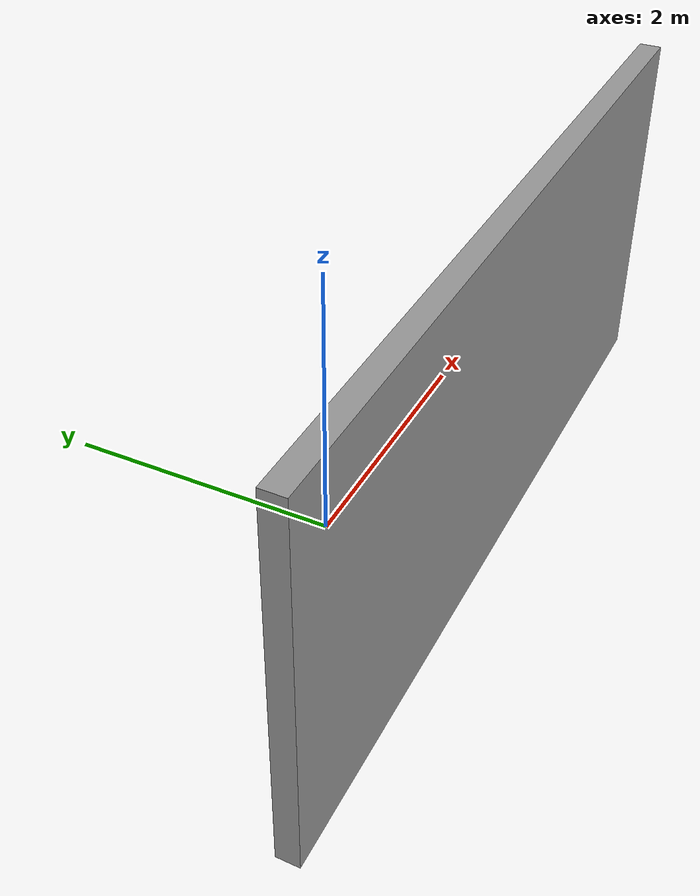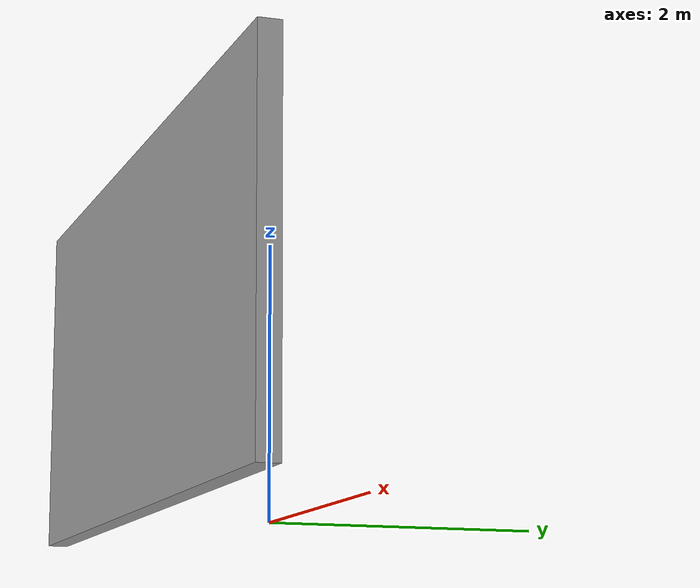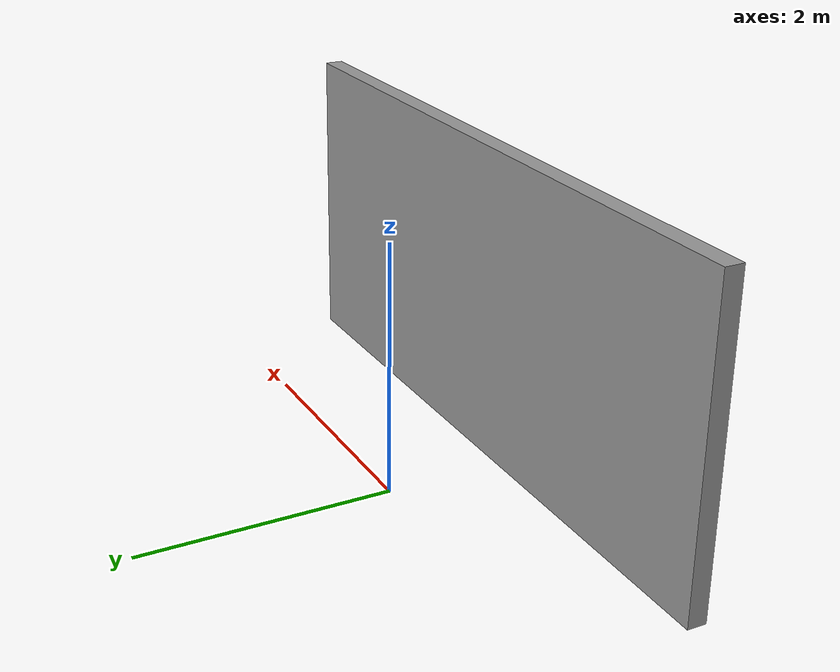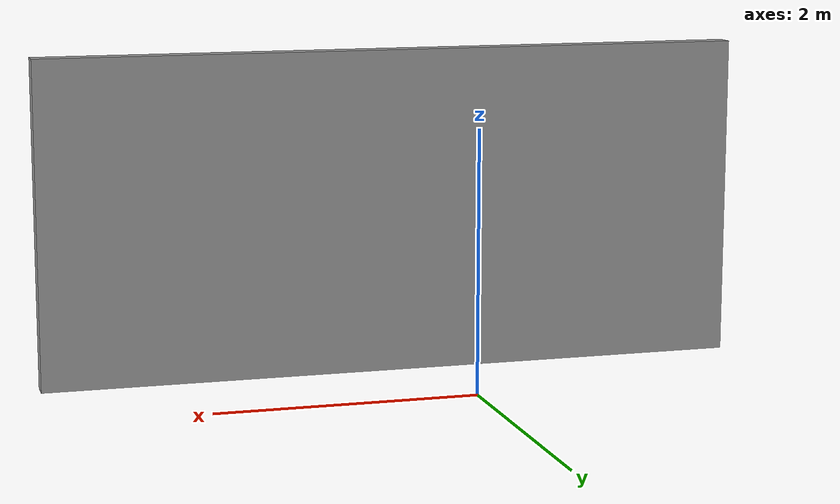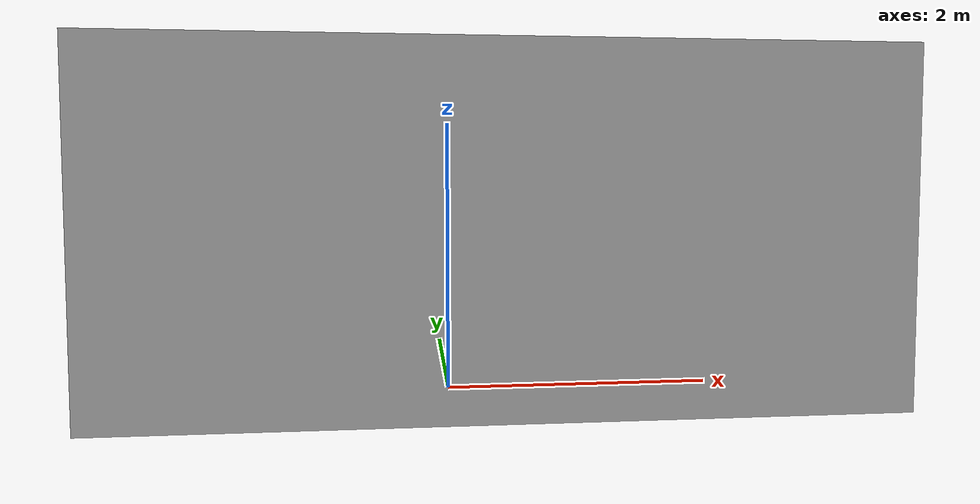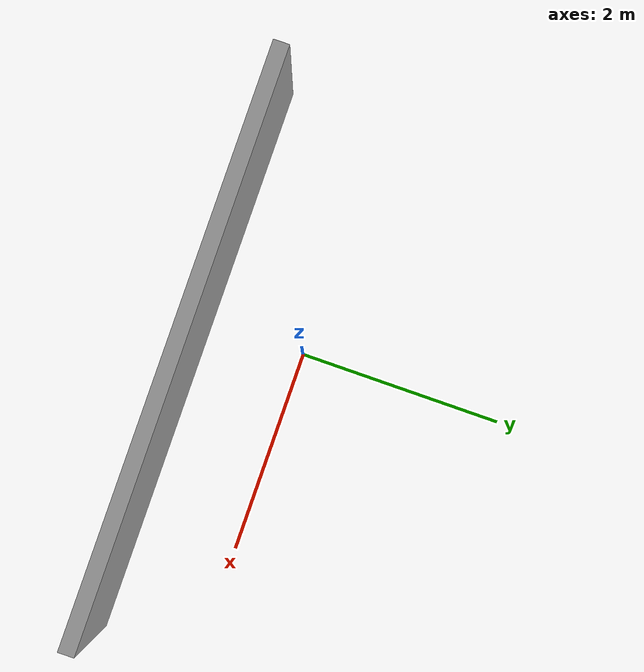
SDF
<?xml version='1.0'?>
<sdf version='1.7'>
  <model name='ww2'>
    <pose>0.375 -0.5425 0 0 -0 0</pose>
    <link name='Wall_0'>
      <collision name='Wall_0_Collision'>
        <geometry>
          <box>
            <size>5.5 0.15 2.5</size>
          </box>
        </geometry>
        <pose>0 0 1.25 0 -0 0</pose>
      </collision>
      <visual name='Wall_0_Visual'>
        <pose>0 0 1.25 0 -0 0</pose>
        <geometry>
          <box>
            <size>5.5 0.15 2.5</size>
          </box>
        </geometry>
        <material>
          <script>
            <uri>file://media/materials/scripts/gazebo.material</uri>
            <name>Gazebo/Grey</name>
          </script>
          <ambient>1 1 1 1</ambient>
        </material>
        <meta>
          <layer>0</layer>
        </meta>
      </visual>
      <pose>0 -0.4675 0 0 -0 0</pose>
    </link>
    <static>1</static>
  </model>
</sdf>
